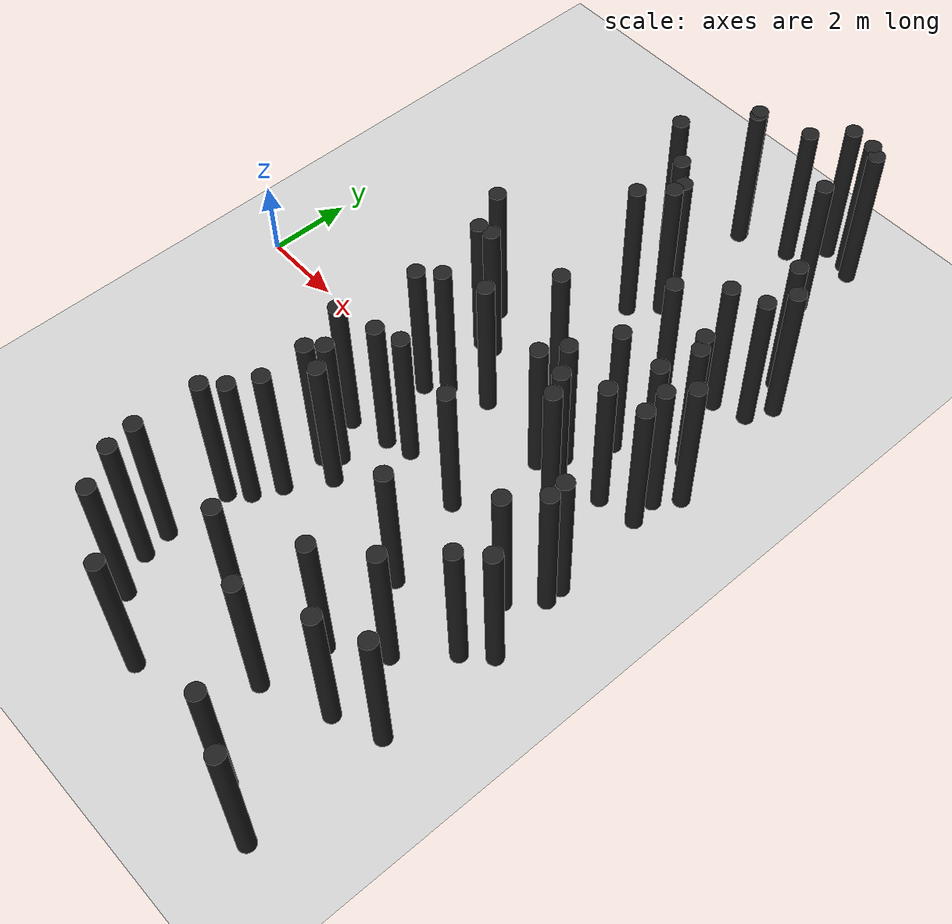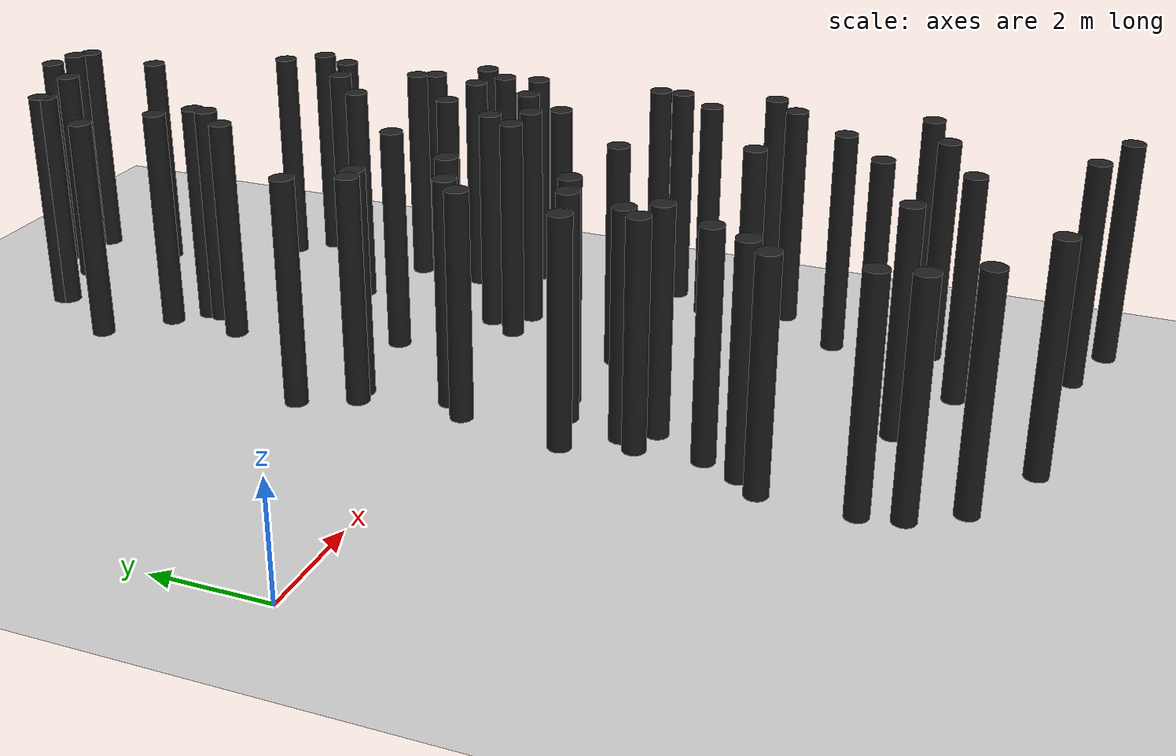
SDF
<sdf version="1.7">
 <world name="default">
  <model name="ground_plane">
   <static>1</static>
   <link name="link">
    <collision name="collision">
     <geometry><plane><normal>0 0 1</normal><size>200 200</size></plane></geometry>
     <surface><friction><ode><mu>100</mu><mu2>50</mu2></ode></friction></surface>
    </collision>
    <visual name="visual">
     <cast_shadows>0</cast_shadows>
     <geometry><plane><normal>0 0 1</normal><size>200 200</size></plane></geometry>
     <material>
      <script><uri>file://media/materials/scripts/gazebo.material</uri><name>Gazebo/Grey</name></script>
     </material>
    </visual>
   </link>
  </model>
  <model name="forest_clone_0_0">
   <pose>7.24116 6.37058 0.00358 0 -0 0</pose>
   <static>1</static>
   <link name="cylinder::link">
    <inertial>
     <mass>1</mass>
     <inertia><ixx>0.083</ixx><ixy>0</ixy><ixz>0</ixz><iyy>0.083</iyy><iyz>0</iyz><izz>0.083</izz></inertia>
    </inertial>
    <collision name="collision">
     <geometry><cylinder><radius>0.2</radius><length>4</length></cylinder></geometry>
    </collision>
    <visual name="visual">
     <geometry><cylinder><radius>0.2</radius><length>4</length></cylinder></geometry>
     <material>
      <script><uri>file://media/materials/scripts/gazebo.material</uri><name>Gazebo/Black</name></script>
     </material>
    </visual>
    <pose>0 0 2 0 -0 0</pose>
   </link>
  </model>
  <model name="forest_clone_7_0">
   <pose>5.27494 -7.51544 0.00194 0 -0 0</pose>
   <static>1</static>
   <link name="cylinder::link">
    <inertial>
     <mass>1</mass>
     <inertia><ixx>0.083</ixx><ixy>0</ixy><ixz>0</ixz><iyy>0.083</iyy><iyz>0</iyz><izz>0.083</izz></inertia>
    </inertial>
    <collision name="collision">
     <geometry><cylinder><radius>0.2</radius><length>4</length></cylinder></geometry>
    </collision>
    <visual name="visual">
     <geometry><cylinder><radius>0.2</radius><length>4</length></cylinder></geometry>
     <material>
      <script><uri>file://media/materials/scripts/gazebo.material</uri><name>Gazebo/Black</name></script>
     </material>
    </visual>
    <pose>0 0 2 0 -0 0</pose>
   </link>
  </model>
  <model name="forest_clone_9_0">
   <pose>5.24685 2.64492 0.00361 0 -0 0</pose>
   <static>1</static>
   <link name="cylinder::link">
    <inertial>
     <mass>1</mass>
     <inertia><ixx>0.083</ixx><ixy>0</ixy><ixz>0</ixz><iyy>0.083</iyy><iyz>0</iyz><izz>0.083</izz></inertia>
    </inertial>
    <collision name="collision">
     <geometry><cylinder><radius>0.2</radius><length>4</length></cylinder></geometry>
    </collision>
    <visual name="visual">
     <geometry><cylinder><radius>0.2</radius><length>4</length></cylinder></geometry>
     <material>
      <script><uri>file://media/materials/scripts/gazebo.material</uri><name>Gazebo/Black</name></script>
     </material>
    </visual>
    <pose>0 0 2 0 -0 0</pose>
   </link>
  </model>
  <model name="forest_clone_11_0">
   <pose>6.44481 -3.3003 -0.00358 0 -0 0</pose>
   <static>1</static>
   <link name="cylinder::link">
    <inertial>
     <mass>1</mass>
     <inertia><ixx>0.083</ixx><ixy>0</ixy><ixz>0</ixz><iyy>0.083</iyy><iyz>0</iyz><izz>0.083</izz></inertia>
    </inertial>
    <collision name="collision">
     <geometry><cylinder><radius>0.2</radius><length>4</length></cylinder></geometry>
    </collision>
    <visual name="visual">
     <geometry><cylinder><radius>0.2</radius><length>4</length></cylinder></geometry>
     <material>
      <script><uri>file://media/materials/scripts/gazebo.material</uri><name>Gazebo/Black</name></script>
     </material>
    </visual>
    <pose>0 0 2 0 -0 0</pose>
   </link>
  </model>
  <model name="forest_clone_13_0">
   <pose>5.80687 -8.34384 -0.00076 0 -0 0</pose>
   <static>1</static>
   <link name="cylinder::link">
    <inertial>
     <mass>1</mass>
     <inertia><ixx>0.083</ixx><ixy>0</ixy><ixz>0</ixz><iyy>0.083</iyy><iyz>0</iyz><izz>0.083</izz></inertia>
    </inertial>
    <collision name="collision">
     <geometry><cylinder><radius>0.2</radius><length>4</length></cylinder></geometry>
    </collision>
    <visual name="visual">
     <geometry><cylinder><radius>0.2</radius><length>4</length></cylinder></geometry>
     <material>
      <script><uri>file://media/materials/scripts/gazebo.material</uri><name>Gazebo/Black</name></script>
     </material>
    </visual>
    <pose>0 0 2 0 -0 0</pose>
   </link>
  </model>
  <model name="forest_clone_18_0">
   <pose>6.99982 -1.56223 -0.00319 0 -0 0</pose>
   <static>1</static>
   <link name="cylinder::link">
    <inertial>
     <mass>1</mass>
     <inertia><ixx>0.083</ixx><ixy>0</ixy><ixz>0</ixz><iyy>0.083</iyy><iyz>0</iyz><izz>0.083</izz></inertia>
    </inertial>
    <collision name="collision">
     <geometry><cylinder><radius>0.2</radius><length>4</length></cylinder></geometry>
    </collision>
    <visual name="visual">
     <geometry><cylinder><radius>0.2</radius><length>4</length></cylinder></geometry>
     <material>
      <script><uri>file://media/materials/scripts/gazebo.material</uri><name>Gazebo/Black</name></script>
     </material>
    </visual>
    <pose>0 0 2 0 -0 0</pose>
   </link>
  </model>
  <model name="forest_clone_23_0">
   <pose>11.6534 0.871969 -0.00336 0 -0 0</pose>
   <static>1</static>
   <link name="cylinder::link">
    <inertial>
     <mass>1</mass>
     <inertia><ixx>0.083</ixx><ixy>0</ixy><ixz>0</ixz><iyy>0.083</iyy><iyz>0</iyz><izz>0.083</izz></inertia>
    </inertial>
    <collision name="collision">
     <geometry><cylinder><radius>0.2</radius><length>4</length></cylinder></geometry>
    </collision>
    <visual name="visual">
     <geometry><cylinder><radius>0.2</radius><length>4</length></cylinder></geometry>
     <material>
      <script><uri>file://media/materials/scripts/gazebo.material</uri><name>Gazebo/Black</name></script>
     </material>
    </visual>
    <pose>0 0 2 0 -0 0</pose>
   </link>
  </model>
  <model name="forest_clone_32_0">
   <pose>5.68981 1.71933 0.00222 0 -0 0</pose>
   <static>1</static>
   <link name="cylinder::link">
    <inertial>
     <mass>1</mass>
     <inertia><ixx>0.083</ixx><ixy>0</ixy><ixz>0</ixz><iyy>0.083</iyy><iyz>0</iyz><izz>0.083</izz></inertia>
    </inertial>
    <collision name="collision">
     <geometry><cylinder><radius>0.2</radius><length>4</length></cylinder></geometry>
    </collision>
    <visual name="visual">
     <geometry><cylinder><radius>0.2</radius><length>4</length></cylinder></geometry>
     <material>
      <script><uri>file://media/materials/scripts/gazebo.material</uri><name>Gazebo/Black</name></script>
     </material>
    </visual>
    <pose>0 0 2 0 -0 0</pose>
   </link>
  </model>
  <model name="forest_clone_45_0">
   <pose>7.76228 5.9118 -0.0038 0 -0 0</pose>
   <static>1</static>
   <link name="cylinder::link">
    <inertial>
     <mass>1</mass>
     <inertia><ixx>0.083</ixx><ixy>0</ixy><ixz>0</ixz><iyy>0.083</iyy><iyz>0</iyz><izz>0.083</izz></inertia>
    </inertial>
    <collision name="collision">
     <geometry><cylinder><radius>0.2</radius><length>4</length></cylinder></geometry>
    </collision>
    <visual name="visual">
     <geometry><cylinder><radius>0.2</radius><length>4</length></cylinder></geometry>
     <material>
      <script><uri>file://media/materials/scripts/gazebo.material</uri><name>Gazebo/Black</name></script>
     </material>
    </visual>
    <pose>0 0 2 0 -0 0</pose>
   </link>
  </model>
  <model name="forest_clone_50_0">
   <pose>11.5881 -4.08853 -0.00065 0 -0 0</pose>
   <static>1</static>
   <link name="cylinder::link">
    <inertial>
     <mass>1</mass>
     <inertia><ixx>0.083</ixx><ixy>0</ixy><ixz>0</ixz><iyy>0.083</iyy><iyz>0</iyz><izz>0.083</izz></inertia>
    </inertial>
    <collision name="collision">
     <geometry><cylinder><radius>0.2</radius><length>4</length></cylinder></geometry>
    </collision>
    <visual name="visual">
     <geometry><cylinder><radius>0.2</radius><length>4</length></cylinder></geometry>
     <material>
      <script><uri>file://media/materials/scripts/gazebo.material</uri><name>Gazebo/Black</name></script>
     </material>
    </visual>
    <pose>0 0 2 0 -0 0</pose>
   </link>
  </model>
  <model name="forest_clone_62_0">
   <pose>11.2828 -2.61491 0.00063 0 -0 0</pose>
   <static>1</static>
   <link name="cylinder::link">
    <inertial>
     <mass>1</mass>
     <inertia><ixx>0.083</ixx><ixy>0</ixy><ixz>0</ixz><iyy>0.083</iyy><iyz>0</iyz><izz>0.083</izz></inertia>
    </inertial>
    <collision name="collision">
     <geometry><cylinder><radius>0.2</radius><length>4</length></cylinder></geometry>
    </collision>
    <visual name="visual">
     <geometry><cylinder><radius>0.2</radius><length>4</length></cylinder></geometry>
     <material>
      <script><uri>file://media/materials/scripts/gazebo.material</uri><name>Gazebo/Black</name></script>
     </material>
    </visual>
    <pose>0 0 2 0 -0 0</pose>
   </link>
  </model>
  <model name="forest_clone_98_0">
   <pose>6.19153 0.254347 -0.00416 0 -0 0</pose>
   <static>1</static>
   <link name="cylinder::link">
    <inertial>
     <mass>1</mass>
     <inertia><ixx>0.083</ixx><ixy>0</ixy><ixz>0</ixz><iyy>0.083</iyy><iyz>0</iyz><izz>0.083</izz></inertia>
    </inertial>
    <collision name="collision">
     <geometry><cylinder><radius>0.2</radius><length>4</length></cylinder></geometry>
    </collision>
    <visual name="visual">
     <geometry><cylinder><radius>0.2</radius><length>4</length></cylinder></geometry>
     <material>
      <script><uri>file://media/materials/scripts/gazebo.material</uri><name>Gazebo/Black</name></script>
     </material>
    </visual>
    <pose>0 0 2 0 -0 0</pose>
   </link>
  </model>
  <model name="forest_clone_105_0">
   <pose>6.01381 1.78442 -0.00227 0 -0 0</pose>
   <static>1</static>
   <link name="cylinder::link">
    <inertial>
     <mass>1</mass>
     <inertia><ixx>0.083</ixx><ixy>0</ixy><ixz>0</ixz><iyy>0.083</iyy><iyz>0</iyz><izz>0.083</izz></inertia>
    </inertial>
    <collision name="collision">
     <geometry><cylinder><radius>0.2</radius><length>4</length></cylinder></geometry>
    </collision>
    <visual name="visual">
     <geometry><cylinder><radius>0.2</radius><length>4</length></cylinder></geometry>
     <material>
      <script><uri>file://media/materials/scripts/gazebo.material</uri><name>Gazebo/Black</name></script>
     </material>
    </visual>
    <pose>0 0 2 0 -0 0</pose>
   </link>
  </model>
  <model name="forest_clone_112_0">
   <pose>7.35279 8.75357 -0.00301 0 -0 0</pose>
   <static>1</static>
   <link name="cylinder::link">
    <inertial>
     <mass>1</mass>
     <inertia><ixx>0.083</ixx><ixy>0</ixy><ixz>0</ixz><iyy>0.083</iyy><iyz>0</iyz><izz>0.083</izz></inertia>
    </inertial>
    <collision name="collision">
     <geometry><cylinder><radius>0.2</radius><length>4</length></cylinder></geometry>
    </collision>
    <visual name="visual">
     <geometry><cylinder><radius>0.2</radius><length>4</length></cylinder></geometry>
     <material>
      <script><uri>file://media/materials/scripts/gazebo.material</uri><name>Gazebo/Black</name></script>
     </material>
    </visual>
    <pose>0 0 2 0 -0 0</pose>
   </link>
  </model>
  <model name="forest_clone_115_0">
   <pose>6.33511 7.2689 0.00385 0 -0 0</pose>
   <static>1</static>
   <link name="cylinder::link">
    <inertial>
     <mass>1</mass>
     <inertia><ixx>0.083</ixx><ixy>0</ixy><ixz>0</ixz><iyy>0.083</iyy><iyz>0</iyz><izz>0.083</izz></inertia>
    </inertial>
    <collision name="collision">
     <geometry><cylinder><radius>0.2</radius><length>4</length></cylinder></geometry>
    </collision>
    <visual name="visual">
     <geometry><cylinder><radius>0.2</radius><length>4</length></cylinder></geometry>
     <material>
      <script><uri>file://media/materials/scripts/gazebo.material</uri><name>Gazebo/Black</name></script>
     </material>
    </visual>
    <pose>0 0 2 0 -0 0</pose>
   </link>
  </model>
  <model name="forest_clone_117_0">
   <pose>9.62198 -6.0138 -0.00323 0 -0 0</pose>
   <static>1</static>
   <link name="cylinder::link">
    <inertial>
     <mass>1</mass>
     <inertia><ixx>0.083</ixx><ixy>0</ixy><ixz>0</ixz><iyy>0.083</iyy><iyz>0</iyz><izz>0.083</izz></inertia>
    </inertial>
    <collision name="collision">
     <geometry><cylinder><radius>0.2</radius><length>4</length></cylinder></geometry>
    </collision>
    <visual name="visual">
     <geometry><cylinder><radius>0.2</radius><length>4</length></cylinder></geometry>
     <material>
      <script><uri>file://media/materials/scripts/gazebo.material</uri><name>Gazebo/Black</name></script>
     </material>
    </visual>
    <pose>0 0 2 0 -0 0</pose>
   </link>
  </model>
  <model name="forest_clone_137_0">
   <pose>7.11188 0.648205 0.00348 0 -0 0</pose>
   <static>1</static>
   <link name="cylinder::link">
    <inertial>
     <mass>1</mass>
     <inertia><ixx>0.083</ixx><ixy>0</ixy><ixz>0</ixz><iyy>0.083</iyy><iyz>0</iyz><izz>0.083</izz></inertia>
    </inertial>
    <collision name="collision">
     <geometry><cylinder><radius>0.2</radius><length>4</length></cylinder></geometry>
    </collision>
    <visual name="visual">
     <geometry><cylinder><radius>0.2</radius><length>4</length></cylinder></geometry>
     <material>
      <script><uri>file://media/materials/scripts/gazebo.material</uri><name>Gazebo/Black</name></script>
     </material>
    </visual>
    <pose>0 0 2 0 -0 0</pose>
   </link>
  </model>
  <model name="forest_clone_138_0">
   <pose>11.117 5.95949 -0.00219 0 -0 0</pose>
   <static>1</static>
   <link name="cylinder::link">
    <inertial>
     <mass>1</mass>
     <inertia><ixx>0.083</ixx><ixy>0</ixy><ixz>0</ixz><iyy>0.083</iyy><iyz>0</iyz><izz>0.083</izz></inertia>
    </inertial>
    <collision name="collision">
     <geometry><cylinder><radius>0.2</radius><length>4</length></cylinder></geometry>
    </collision>
    <visual name="visual">
     <geometry><cylinder><radius>0.2</radius><length>4</length></cylinder></geometry>
     <material>
      <script><uri>file://media/materials/scripts/gazebo.material</uri><name>Gazebo/Black</name></script>
     </material>
    </visual>
    <pose>0 0 2 0 -0 0</pose>
   </link>
  </model>
  <model name="forest_clone_0_1">
   <pose>5.45907 -1.99936 0.00451 0 -0 0</pose>
   <static>1</static>
   <link name="cylinder::link">
    <inertial>
     <mass>1</mass>
     <inertia><ixx>0.083</ixx><ixy>0</ixy><ixz>0</ixz><iyy>0.083</iyy><iyz>0</iyz><izz>0.083</izz></inertia>
    </inertial>
    <collision name="collision">
     <geometry><cylinder><radius>0.2</radius><length>4</length></cylinder></geometry>
    </collision>
    <visual name="visual">
     <geometry><cylinder><radius>0.2</radius><length>4</length></cylinder></geometry>
     <material>
      <script><uri>file://media/materials/scripts/gazebo.material</uri><name>Gazebo/Black</name></script>
     </material>
    </visual>
    <pose>0 0 2 0 -0 0</pose>
   </link>
  </model>
  <model name="forest_clone_3_1">
   <pose>11.9585 -9.74185 0.00065 0 -0 0</pose>
   <static>1</static>
   <link name="cylinder::link">
    <inertial>
     <mass>1</mass>
     <inertia><ixx>0.083</ixx><ixy>0</ixy><ixz>0</ixz><iyy>0.083</iyy><iyz>0</iyz><izz>0.083</izz></inertia>
    </inertial>
    <collision name="collision">
     <geometry><cylinder><radius>0.2</radius><length>4</length></cylinder></geometry>
    </collision>
    <visual name="visual">
     <geometry><cylinder><radius>0.2</radius><length>4</length></cylinder></geometry>
     <material>
      <script><uri>file://media/materials/scripts/gazebo.material</uri><name>Gazebo/Black</name></script>
     </material>
    </visual>
    <pose>0 0 2 0 -0 0</pose>
   </link>
  </model>
  <model name="forest_clone_10_1">
   <pose>10.76 -9.30435 0.00193 0 -0 0</pose>
   <static>1</static>
   <link name="cylinder::link">
    <inertial>
     <mass>1</mass>
     <inertia><ixx>0.083</ixx><ixy>0</ixy><ixz>0</ixz><iyy>0.083</iyy><iyz>0</iyz><izz>0.083</izz></inertia>
    </inertial>
    <collision name="collision">
     <geometry><cylinder><radius>0.2</radius><length>4</length></cylinder></geometry>
    </collision>
    <visual name="visual">
     <geometry><cylinder><radius>0.2</radius><length>4</length></cylinder></geometry>
     <material>
      <script><uri>file://media/materials/scripts/gazebo.material</uri><name>Gazebo/Black</name></script>
     </material>
    </visual>
    <pose>0 0 2 0 -0 0</pose>
   </link>
  </model>
  <model name="forest_clone_16_1">
   <pose>7.31064 8.85233 -0.00019 0 -0 0</pose>
   <static>1</static>
   <link name="cylinder::link">
    <inertial>
     <mass>1</mass>
     <inertia><ixx>0.083</ixx><ixy>0</ixy><ixz>0</ixz><iyy>0.083</iyy><iyz>0</iyz><izz>0.083</izz></inertia>
    </inertial>
    <collision name="collision">
     <geometry><cylinder><radius>0.2</radius><length>4</length></cylinder></geometry>
    </collision>
    <visual name="visual">
     <geometry><cylinder><radius>0.2</radius><length>4</length></cylinder></geometry>
     <material>
      <script><uri>file://media/materials/scripts/gazebo.material</uri><name>Gazebo/Black</name></script>
     </material>
    </visual>
    <pose>0 0 2 0 -0 0</pose>
   </link>
  </model>
  <model name="forest_clone_27_1">
   <pose>5.86993 -4.25539 -1e-05 0 -0 0</pose>
   <static>1</static>
   <link name="cylinder::link">
    <inertial>
     <mass>1</mass>
     <inertia><ixx>0.083</ixx><ixy>0</ixy><ixz>0</ixz><iyy>0.083</iyy><iyz>0</iyz><izz>0.083</izz></inertia>
    </inertial>
    <collision name="collision">
     <geometry><cylinder><radius>0.2</radius><length>4</length></cylinder></geometry>
    </collision>
    <visual name="visual">
     <geometry><cylinder><radius>0.2</radius><length>4</length></cylinder></geometry>
     <material>
      <script><uri>file://media/materials/scripts/gazebo.material</uri><name>Gazebo/Black</name></script>
     </material>
    </visual>
    <pose>0 0 2 0 -0 0</pose>
   </link>
  </model>
  <model name="forest_clone_30_1">
   <pose>7.92701 2.06151 0.00265 0 -0 0</pose>
   <static>1</static>
   <link name="cylinder::link">
    <inertial>
     <mass>1</mass>
     <inertia><ixx>0.083</ixx><ixy>0</ixy><ixz>0</ixz><iyy>0.083</iyy><iyz>0</iyz><izz>0.083</izz></inertia>
    </inertial>
    <collision name="collision">
     <geometry><cylinder><radius>0.2</radius><length>4</length></cylinder></geometry>
    </collision>
    <visual name="visual">
     <geometry><cylinder><radius>0.2</radius><length>4</length></cylinder></geometry>
     <material>
      <script><uri>file://media/materials/scripts/gazebo.material</uri><name>Gazebo/Black</name></script>
     </material>
    </visual>
    <pose>0 0 2 0 -0 0</pose>
   </link>
  </model>
  <model name="forest_clone_32_1">
   <pose>7.21268 5.00533 -0.00056 0 -0 0</pose>
   <static>1</static>
   <link name="cylinder::link">
    <inertial>
     <mass>1</mass>
     <inertia><ixx>0.083</ixx><ixy>0</ixy><ixz>0</ixz><iyy>0.083</iyy><iyz>0</iyz><izz>0.083</izz></inertia>
    </inertial>
    <collision name="collision">
     <geometry><cylinder><radius>0.2</radius><length>4</length></cylinder></geometry>
    </collision>
    <visual name="visual">
     <geometry><cylinder><radius>0.2</radius><length>4</length></cylinder></geometry>
     <material>
      <script><uri>file://media/materials/scripts/gazebo.material</uri><name>Gazebo/Black</name></script>
     </material>
    </visual>
    <pose>0 0 2 0 -0 0</pose>
   </link>
  </model>
  <model name="forest_clone_37_1">
   <pose>9.10024 0.349503 -0.00406 0 -0 0</pose>
   <static>1</static>
   <link name="cylinder::link">
    <inertial>
     <mass>1</mass>
     <inertia><ixx>0.083</ixx><ixy>0</ixy><ixz>0</ixz><iyy>0.083</iyy><iyz>0</iyz><izz>0.083</izz></inertia>
    </inertial>
    <collision name="collision">
     <geometry><cylinder><radius>0.2</radius><length>4</length></cylinder></geometry>
    </collision>
    <visual name="visual">
     <geometry><cylinder><radius>0.2</radius><length>4</length></cylinder></geometry>
     <material>
      <script><uri>file://media/materials/scripts/gazebo.material</uri><name>Gazebo/Black</name></script>
     </material>
    </visual>
    <pose>0 0 2 0 -0 0</pose>
   </link>
  </model>
  <model name="forest_clone_44_1">
   <pose>9.42004 0.885029 -0.00153 0 -0 0</pose>
   <static>1</static>
   <link name="cylinder::link">
    <inertial>
     <mass>1</mass>
     <inertia><ixx>0.083</ixx><ixy>0</ixy><ixz>0</ixz><iyy>0.083</iyy><iyz>0</iyz><izz>0.083</izz></inertia>
    </inertial>
    <collision name="collision">
     <geometry><cylinder><radius>0.2</radius><length>4</length></cylinder></geometry>
    </collision>
    <visual name="visual">
     <geometry><cylinder><radius>0.2</radius><length>4</length></cylinder></geometry>
     <material>
      <script><uri>file://media/materials/scripts/gazebo.material</uri><name>Gazebo/Black</name></script>
     </material>
    </visual>
    <pose>0 0 2 0 -0 0</pose>
   </link>
  </model>
  <model name="forest_clone_51_1">
   <pose>5.15196 -6.83699 0.00191 0 -0 0</pose>
   <static>1</static>
   <link name="cylinder::link">
    <inertial>
     <mass>1</mass>
     <inertia><ixx>0.083</ixx><ixy>0</ixy><ixz>0</ixz><iyy>0.083</iyy><iyz>0</iyz><izz>0.083</izz></inertia>
    </inertial>
    <collision name="collision">
     <geometry><cylinder><radius>0.2</radius><length>4</length></cylinder></geometry>
    </collision>
    <visual name="visual">
     <geometry><cylinder><radius>0.2</radius><length>4</length></cylinder></geometry>
     <material>
      <script><uri>file://media/materials/scripts/gazebo.material</uri><name>Gazebo/Black</name></script>
     </material>
    </visual>
    <pose>0 0 2 0 -0 0</pose>
   </link>
  </model>
  <model name="forest_clone_52_1">
   <pose>6.40989 -1.75638 -0.00474 0 -0 0</pose>
   <static>1</static>
   <link name="cylinder::link">
    <inertial>
     <mass>1</mass>
     <inertia><ixx>0.083</ixx><ixy>0</ixy><ixz>0</ixz><iyy>0.083</iyy><iyz>0</iyz><izz>0.083</izz></inertia>
    </inertial>
    <collision name="collision">
     <geometry><cylinder><radius>0.2</radius><length>4</length></cylinder></geometry>
    </collision>
    <visual name="visual">
     <geometry><cylinder><radius>0.2</radius><length>4</length></cylinder></geometry>
     <material>
      <script><uri>file://media/materials/scripts/gazebo.material</uri><name>Gazebo/Black</name></script>
     </material>
    </visual>
    <pose>0 0 2 0 -0 0</pose>
   </link>
  </model>
  <model name="forest_clone_58_1">
   <pose>10.9163 -6.87302 -0.001 0 -0 0</pose>
   <static>1</static>
   <link name="cylinder::link">
    <inertial>
     <mass>1</mass>
     <inertia><ixx>0.083</ixx><ixy>0</ixy><ixz>0</ixz><iyy>0.083</iyy><iyz>0</iyz><izz>0.083</izz></inertia>
    </inertial>
    <collision name="collision">
     <geometry><cylinder><radius>0.2</radius><length>4</length></cylinder></geometry>
    </collision>
    <visual name="visual">
     <geometry><cylinder><radius>0.2</radius><length>4</length></cylinder></geometry>
     <material>
      <script><uri>file://media/materials/scripts/gazebo.material</uri><name>Gazebo/Black</name></script>
     </material>
    </visual>
    <pose>0 0 2 0 -0 0</pose>
   </link>
  </model>
  <model name="forest_clone_74_1">
   <pose>11.2771 2.80939 -0.0047 0 -0 0</pose>
   <static>1</static>
   <link name="cylinder::link">
    <inertial>
     <mass>1</mass>
     <inertia><ixx>0.083</ixx><ixy>0</ixy><ixz>0</ixz><iyy>0.083</iyy><iyz>0</iyz><izz>0.083</izz></inertia>
    </inertial>
    <collision name="collision">
     <geometry><cylinder><radius>0.2</radius><length>4</length></cylinder></geometry>
    </collision>
    <visual name="visual">
     <geometry><cylinder><radius>0.2</radius><length>4</length></cylinder></geometry>
     <material>
      <script><uri>file://media/materials/scripts/gazebo.material</uri><name>Gazebo/Black</name></script>
     </material>
    </visual>
    <pose>0 0 2 0 -0 0</pose>
   </link>
  </model>
  <model name="forest_clone_82_1">
   <pose>11.5743 1.51346 -0.00472 0 -0 0</pose>
   <static>1</static>
   <link name="cylinder::link">
    <inertial>
     <mass>1</mass>
     <inertia><ixx>0.083</ixx><ixy>0</ixy><ixz>0</ixz><iyy>0.083</iyy><iyz>0</iyz><izz>0.083</izz></inertia>
    </inertial>
    <collision name="collision">
     <geometry><cylinder><radius>0.2</radius><length>4</length></cylinder></geometry>
    </collision>
    <visual name="visual">
     <geometry><cylinder><radius>0.2</radius><length>4</length></cylinder></geometry>
     <material>
      <script><uri>file://media/materials/scripts/gazebo.material</uri><name>Gazebo/Black</name></script>
     </material>
    </visual>
    <pose>0 0 2 0 -0 0</pose>
   </link>
  </model>
  <model name="forest_clone_84_1">
   <pose>11.8597 -1.89269 -0.00338 0 -0 0</pose>
   <static>1</static>
   <link name="cylinder::link">
    <inertial>
     <mass>1</mass>
     <inertia><ixx>0.083</ixx><ixy>0</ixy><ixz>0</ixz><iyy>0.083</iyy><iyz>0</iyz><izz>0.083</izz></inertia>
    </inertial>
    <collision name="collision">
     <geometry><cylinder><radius>0.2</radius><length>4</length></cylinder></geometry>
    </collision>
    <visual name="visual">
     <geometry><cylinder><radius>0.2</radius><length>4</length></cylinder></geometry>
     <material>
      <script><uri>file://media/materials/scripts/gazebo.material</uri><name>Gazebo/Black</name></script>
     </material>
    </visual>
    <pose>0 0 2 0 -0 0</pose>
   </link>
  </model>
  <model name="forest_clone_94_1">
   <pose>11.9528 2.03787 -0.00492 0 -0 0</pose>
   <static>1</static>
   <link name="cylinder::link">
    <inertial>
     <mass>1</mass>
     <inertia><ixx>0.083</ixx><ixy>0</ixy><ixz>0</ixz><iyy>0.083</iyy><iyz>0</iyz><izz>0.083</izz></inertia>
    </inertial>
    <collision name="collision">
     <geometry><cylinder><radius>0.2</radius><length>4</length></cylinder></geometry>
    </collision>
    <visual name="visual">
     <geometry><cylinder><radius>0.2</radius><length>4</length></cylinder></geometry>
     <material>
      <script><uri>file://media/materials/scripts/gazebo.material</uri><name>Gazebo/Black</name></script>
     </material>
    </visual>
    <pose>0 0 2 0 -0 0</pose>
   </link>
  </model>
  <model name="forest_clone_98_1">
   <pose>11.9873 -6.42283 -0.00105 0 -0 0</pose>
   <static>1</static>
   <link name="cylinder::link">
    <inertial>
     <mass>1</mass>
     <inertia><ixx>0.083</ixx><ixy>0</ixy><ixz>0</ixz><iyy>0.083</iyy><iyz>0</iyz><izz>0.083</izz></inertia>
    </inertial>
    <collision name="collision">
     <geometry><cylinder><radius>0.2</radius><length>4</length></cylinder></geometry>
    </collision>
    <visual name="visual">
     <geometry><cylinder><radius>0.2</radius><length>4</length></cylinder></geometry>
     <material>
      <script><uri>file://media/materials/scripts/gazebo.material</uri><name>Gazebo/Black</name></script>
     </material>
    </visual>
    <pose>0 0 2 0 -0 0</pose>
   </link>
  </model>
  <model name="forest_clone_101_1">
   <pose>11.6135 5.37208 0.00285 0 -0 0</pose>
   <static>1</static>
   <link name="cylinder::link">
    <inertial>
     <mass>1</mass>
     <inertia><ixx>0.083</ixx><ixy>0</ixy><ixz>0</ixz><iyy>0.083</iyy><iyz>0</iyz><izz>0.083</izz></inertia>
    </inertial>
    <collision name="collision">
     <geometry><cylinder><radius>0.2</radius><length>4</length></cylinder></geometry>
    </collision>
    <visual name="visual">
     <geometry><cylinder><radius>0.2</radius><length>4</length></cylinder></geometry>
     <material>
      <script><uri>file://media/materials/scripts/gazebo.material</uri><name>Gazebo/Black</name></script>
     </material>
    </visual>
    <pose>0 0 2 0 -0 0</pose>
   </link>
  </model>
  <model name="forest_clone_105_1">
   <pose>9.36098 -3.93711 0.00133 0 -0 0</pose>
   <static>1</static>
   <link name="cylinder::link">
    <inertial>
     <mass>1</mass>
     <inertia><ixx>0.083</ixx><ixy>0</ixy><ixz>0</ixz><iyy>0.083</iyy><iyz>0</iyz><izz>0.083</izz></inertia>
    </inertial>
    <collision name="collision">
     <geometry><cylinder><radius>0.2</radius><length>4</length></cylinder></geometry>
    </collision>
    <visual name="visual">
     <geometry><cylinder><radius>0.2</radius><length>4</length></cylinder></geometry>
     <material>
      <script><uri>file://media/materials/scripts/gazebo.material</uri><name>Gazebo/Black</name></script>
     </material>
    </visual>
    <pose>0 0 2 0 -0 0</pose>
   </link>
  </model>
  <model name="forest_clone_108_1">
   <pose>10.7453 0.708152 0.0032 0 -0 0</pose>
   <static>1</static>
   <link name="cylinder::link">
    <inertial>
     <mass>1</mass>
     <inertia><ixx>0.083</ixx><ixy>0</ixy><ixz>0</ixz><iyy>0.083</iyy><iyz>0</iyz><izz>0.083</izz></inertia>
    </inertial>
    <collision name="collision">
     <geometry><cylinder><radius>0.2</radius><length>4</length></cylinder></geometry>
    </collision>
    <visual name="visual">
     <geometry><cylinder><radius>0.2</radius><length>4</length></cylinder></geometry>
     <material>
      <script><uri>file://media/materials/scripts/gazebo.material</uri><name>Gazebo/Black</name></script>
     </material>
    </visual>
    <pose>0 0 2 0 -0 0</pose>
   </link>
  </model>
  <model name="forest_clone_115_1">
   <pose>7.33814 -9.15347 -0.00486 0 -0 0</pose>
   <static>1</static>
   <link name="cylinder::link">
    <inertial>
     <mass>1</mass>
     <inertia><ixx>0.083</ixx><ixy>0</ixy><ixz>0</ixz><iyy>0.083</iyy><iyz>0</iyz><izz>0.083</izz></inertia>
    </inertial>
    <collision name="collision">
     <geometry><cylinder><radius>0.2</radius><length>4</length></cylinder></geometry>
    </collision>
    <visual name="visual">
     <geometry><cylinder><radius>0.2</radius><length>4</length></cylinder></geometry>
     <material>
      <script><uri>file://media/materials/scripts/gazebo.material</uri><name>Gazebo/Black</name></script>
     </material>
    </visual>
    <pose>0 0 2 0 -0 0</pose>
   </link>
  </model>
  <model name="forest_clone_117_1">
   <pose>5.56009 -4.89459 0.00203 0 -0 0</pose>
   <static>1</static>
   <link name="cylinder::link">
    <inertial>
     <mass>1</mass>
     <inertia><ixx>0.083</ixx><ixy>0</ixy><ixz>0</ixz><iyy>0.083</iyy><iyz>0</iyz><izz>0.083</izz></inertia>
    </inertial>
    <collision name="collision">
     <geometry><cylinder><radius>0.2</radius><length>4</length></cylinder></geometry>
    </collision>
    <visual name="visual">
     <geometry><cylinder><radius>0.2</radius><length>4</length></cylinder></geometry>
     <material>
      <script><uri>file://media/materials/scripts/gazebo.material</uri><name>Gazebo/Black</name></script>
     </material>
    </visual>
    <pose>0 0 2 0 -0 0</pose>
   </link>
  </model>
  <model name="forest_clone_119_1">
   <pose>8.56309 9.16724 -0.00315 0 -0 0</pose>
   <static>1</static>
   <link name="cylinder::link">
    <inertial>
     <mass>1</mass>
     <inertia><ixx>0.083</ixx><ixy>0</ixy><ixz>0</ixz><iyy>0.083</iyy><iyz>0</iyz><izz>0.083</izz></inertia>
    </inertial>
    <collision name="collision">
     <geometry><cylinder><radius>0.2</radius><length>4</length></cylinder></geometry>
    </collision>
    <visual name="visual">
     <geometry><cylinder><radius>0.2</radius><length>4</length></cylinder></geometry>
     <material>
      <script><uri>file://media/materials/scripts/gazebo.material</uri><name>Gazebo/Black</name></script>
     </material>
    </visual>
    <pose>0 0 2 0 -0 0</pose>
   </link>
  </model>
  <model name="forest_clone_142_1">
   <pose>11.048 1.88111 -0.0025 0 -0 0</pose>
   <static>1</static>
   <link name="cylinder::link">
    <inertial>
     <mass>1</mass>
     <inertia><ixx>0.083</ixx><ixy>0</ixy><ixz>0</ixz><iyy>0.083</iyy><iyz>0</iyz><izz>0.083</izz></inertia>
    </inertial>
    <collision name="collision">
     <geometry><cylinder><radius>0.2</radius><length>4</length></cylinder></geometry>
    </collision>
    <visual name="visual">
     <geometry><cylinder><radius>0.2</radius><length>4</length></cylinder></geometry>
     <material>
      <script><uri>file://media/materials/scripts/gazebo.material</uri><name>Gazebo/Black</name></script>
     </material>
    </visual>
    <pose>0 0 2 0 -0 0</pose>
   </link>
  </model>
  <model name="forest_clone_2_2">
   <pose>9.4078 -7.5358 -0.00182 0 -0 0</pose>
   <static>1</static>
   <link name="cylinder::link">
    <inertial>
     <mass>1</mass>
     <inertia><ixx>0.083</ixx><ixy>0</ixy><ixz>0</ixz><iyy>0.083</iyy><iyz>0</iyz><izz>0.083</izz></inertia>
    </inertial>
    <collision name="collision">
     <geometry><cylinder><radius>0.2</radius><length>4</length></cylinder></geometry>
    </collision>
    <visual name="visual">
     <geometry><cylinder><radius>0.2</radius><length>4</length></cylinder></geometry>
     <material>
      <script><uri>file://media/materials/scripts/gazebo.material</uri><name>Gazebo/Black</name></script>
     </material>
    </visual>
    <pose>0 0 2 0 -0 0</pose>
   </link>
  </model>
  <model name="forest_clone_5_2">
   <pose>9.68552 3.66755 -0.00115 0 -0 0</pose>
   <static>1</static>
   <link name="cylinder::link">
    <inertial>
     <mass>1</mass>
     <inertia><ixx>0.083</ixx><ixy>0</ixy><ixz>0</ixz><iyy>0.083</iyy><iyz>0</iyz><izz>0.083</izz></inertia>
    </inertial>
    <collision name="collision">
     <geometry><cylinder><radius>0.2</radius><length>4</length></cylinder></geometry>
    </collision>
    <visual name="visual">
     <geometry><cylinder><radius>0.2</radius><length>4</length></cylinder></geometry>
     <material>
      <script><uri>file://media/materials/scripts/gazebo.material</uri><name>Gazebo/Black</name></script>
     </material>
    </visual>
    <pose>0 0 2 0 -0 0</pose>
   </link>
  </model>
  <model name="forest_clone_15_2">
   <pose>11.3351 4.7357 -0.00329 0 -0 0</pose>
   <static>1</static>
   <link name="cylinder::link">
    <inertial>
     <mass>1</mass>
     <inertia><ixx>0.083</ixx><ixy>0</ixy><ixz>0</ixz><iyy>0.083</iyy><iyz>0</iyz><izz>0.083</izz></inertia>
    </inertial>
    <collision name="collision">
     <geometry><cylinder><radius>0.2</radius><length>4</length></cylinder></geometry>
    </collision>
    <visual name="visual">
     <geometry><cylinder><radius>0.2</radius><length>4</length></cylinder></geometry>
     <material>
      <script><uri>file://media/materials/scripts/gazebo.material</uri><name>Gazebo/Black</name></script>
     </material>
    </visual>
    <pose>0 0 2 0 -0 0</pose>
   </link>
  </model>
  <model name="forest_clone_16_2">
   <pose>9.89726 1.9354 0.00202 0 -0 0</pose>
   <static>1</static>
   <link name="cylinder::link">
    <inertial>
     <mass>1</mass>
     <inertia><ixx>0.083</ixx><ixy>0</ixy><ixz>0</ixz><iyy>0.083</iyy><iyz>0</iyz><izz>0.083</izz></inertia>
    </inertial>
    <collision name="collision">
     <geometry><cylinder><radius>0.2</radius><length>4</length></cylinder></geometry>
    </collision>
    <visual name="visual">
     <geometry><cylinder><radius>0.2</radius><length>4</length></cylinder></geometry>
     <material>
      <script><uri>file://media/materials/scripts/gazebo.material</uri><name>Gazebo/Black</name></script>
     </material>
    </visual>
    <pose>0 0 2 0 -0 0</pose>
   </link>
  </model>
  <model name="forest_clone_23_2">
   <pose>7.73939 5.6341 0.00091 0 -0 0</pose>
   <static>1</static>
   <link name="cylinder::link">
    <inertial>
     <mass>1</mass>
     <inertia><ixx>0.083</ixx><ixy>0</ixy><ixz>0</ixz><iyy>0.083</iyy><iyz>0</iyz><izz>0.083</izz></inertia>
    </inertial>
    <collision name="collision">
     <geometry><cylinder><radius>0.2</radius><length>4</length></cylinder></geometry>
    </collision>
    <visual name="visual">
     <geometry><cylinder><radius>0.2</radius><length>4</length></cylinder></geometry>
     <material>
      <script><uri>file://media/materials/scripts/gazebo.material</uri><name>Gazebo/Black</name></script>
     </material>
    </visual>
    <pose>0 0 2 0 -0 0</pose>
   </link>
  </model>
  <model name="forest_clone_24_2">
   <pose>9.83789 0.282086 -0.00386 0 -0 0</pose>
   <static>1</static>
   <link name="cylinder::link">
    <inertial>
     <mass>1</mass>
     <inertia><ixx>0.083</ixx><ixy>0</ixy><ixz>0</ixz><iyy>0.083</iyy><iyz>0</iyz><izz>0.083</izz></inertia>
    </inertial>
    <collision name="collision">
     <geometry><cylinder><radius>0.2</radius><length>4</length></cylinder></geometry>
    </collision>
    <visual name="visual">
     <geometry><cylinder><radius>0.2</radius><length>4</length></cylinder></geometry>
     <material>
      <script><uri>file://media/materials/scripts/gazebo.material</uri><name>Gazebo/Black</name></script>
     </material>
    </visual>
    <pose>0 0 2 0 -0 0</pose>
   </link>
  </model>
  <model name="forest_clone_45_2">
   <pose>11.8393 -1.47434 0.00161 0 -0 0</pose>
   <static>1</static>
   <link name="cylinder::link">
    <inertial>
     <mass>1</mass>
     <inertia><ixx>0.083</ixx><ixy>0</ixy><ixz>0</ixz><iyy>0.083</iyy><iyz>0</iyz><izz>0.083</izz></inertia>
    </inertial>
    <collision name="collision">
     <geometry><cylinder><radius>0.2</radius><length>4</length></cylinder></geometry>
    </collision>
    <visual name="visual">
     <geometry><cylinder><radius>0.2</radius><length>4</length></cylinder></geometry>
     <material>
      <script><uri>file://media/materials/scripts/gazebo.material</uri><name>Gazebo/Black</name></script>
     </material>
    </visual>
    <pose>0 0 2 0 -0 0</pose>
   </link>
  </model>
  <model name="forest_clone_51_2">
   <pose>7.7833 -6.83658 -0.0007 0 -0 0</pose>
   <static>1</static>
   <link name="cylinder::link">
    <inertial>
     <mass>1</mass>
     <inertia><ixx>0.083</ixx><ixy>0</ixy><ixz>0</ixz><iyy>0.083</iyy><iyz>0</iyz><izz>0.083</izz></inertia>
    </inertial>
    <collision name="collision">
     <geometry><cylinder><radius>0.2</radius><length>4</length></cylinder></geometry>
    </collision>
    <visual name="visual">
     <geometry><cylinder><radius>0.2</radius><length>4</length></cylinder></geometry>
     <material>
      <script><uri>file://media/materials/scripts/gazebo.material</uri><name>Gazebo/Black</name></script>
     </material>
    </visual>
    <pose>0 0 2 0 -0 0</pose>
   </link>
  </model>
  <model name="forest_clone_53_2">
   <pose>10.042 9.72093 0.00389 0 -0 0</pose>
   <static>1</static>
   <link name="cylinder::link">
    <inertial>
     <mass>1</mass>
     <inertia><ixx>0.083</ixx><ixy>0</ixy><ixz>0</ixz><iyy>0.083</iyy><iyz>0</iyz><izz>0.083</izz></inertia>
    </inertial>
    <collision name="collision">
     <geometry><cylinder><radius>0.2</radius><length>4</length></cylinder></geometry>
    </collision>
    <visual name="visual">
     <geometry><cylinder><radius>0.2</radius><length>4</length></cylinder></geometry>
     <material>
      <script><uri>file://media/materials/scripts/gazebo.material</uri><name>Gazebo/Black</name></script>
     </material>
    </visual>
    <pose>0 0 2 0 -0 0</pose>
   </link>
  </model>
  <model name="forest_clone_58_2">
   <pose>6.08288 -2.80515 -0.00106 0 -0 0</pose>
   <static>1</static>
   <link name="cylinder::link">
    <inertial>
     <mass>1</mass>
     <inertia><ixx>0.083</ixx><ixy>0</ixy><ixz>0</ixz><iyy>0.083</iyy><iyz>0</iyz><izz>0.083</izz></inertia>
    </inertial>
    <collision name="collision">
     <geometry><cylinder><radius>0.2</radius><length>4</length></cylinder></geometry>
    </collision>
    <visual name="visual">
     <geometry><cylinder><radius>0.2</radius><length>4</length></cylinder></geometry>
     <material>
      <script><uri>file://media/materials/scripts/gazebo.material</uri><name>Gazebo/Black</name></script>
     </material>
    </visual>
    <pose>0 0 2 0 -0 0</pose>
   </link>
  </model>
  <model name="forest_clone_63_2">
   <pose>5.789 -0.139965 0.0044 0 -0 0</pose>
   <static>1</static>
   <link name="cylinder::link">
    <inertial>
     <mass>1</mass>
     <inertia><ixx>0.083</ixx><ixy>0</ixy><ixz>0</ixz><iyy>0.083</iyy><iyz>0</iyz><izz>0.083</izz></inertia>
    </inertial>
    <collision name="collision">
     <geometry><cylinder><radius>0.2</radius><length>4</length></cylinder></geometry>
    </collision>
    <visual name="visual">
     <geometry><cylinder><radius>0.2</radius><length>4</length></cylinder></geometry>
     <material>
      <script><uri>file://media/materials/scripts/gazebo.material</uri><name>Gazebo/Black</name></script>
     </material>
    </visual>
    <pose>0 0 2 0 -0 0</pose>
   </link>
  </model>
  <model name="forest_clone_85_2">
   <pose>9.7803 9.90497 0.00423 0 -0 0</pose>
   <static>1</static>
   <link name="cylinder::link">
    <inertial>
     <mass>1</mass>
     <inertia><ixx>0.083</ixx><ixy>0</ixy><ixz>0</ixz><iyy>0.083</iyy><iyz>0</iyz><izz>0.083</izz></inertia>
    </inertial>
    <collision name="collision">
     <geometry><cylinder><radius>0.2</radius><length>4</length></cylinder></geometry>
    </collision>
    <visual name="visual">
     <geometry><cylinder><radius>0.2</radius><length>4</length></cylinder></geometry>
     <material>
      <script><uri>file://media/materials/scripts/gazebo.material</uri><name>Gazebo/Black</name></script>
     </material>
    </visual>
    <pose>0 0 2 0 -0 0</pose>
   </link>
  </model>
  <model name="forest_clone_88_2">
   <pose>12.1325 -3.57715 -0.00229 0 -0 0</pose>
   <static>1</static>
   <link name="cylinder::link">
    <inertial>
     <mass>1</mass>
     <inertia><ixx>0.083</ixx><ixy>0</ixy><ixz>0</ixz><iyy>0.083</iyy><iyz>0</iyz><izz>0.083</izz></inertia>
    </inertial>
    <collision name="collision">
     <geometry><cylinder><radius>0.2</radius><length>4</length></cylinder></geometry>
    </collision>
    <visual name="visual">
     <geometry><cylinder><radius>0.2</radius><length>4</length></cylinder></geometry>
     <material>
      <script><uri>file://media/materials/scripts/gazebo.material</uri><name>Gazebo/Black</name></script>
     </material>
    </visual>
    <pose>0 0 2 0 -0 0</pose>
   </link>
  </model>
  <model name="forest_clone_96_2">
   <pose>10.5641 4.47327 -0.00167 0 -0 0</pose>
   <static>1</static>
   <link name="cylinder::link">
    <inertial>
     <mass>1</mass>
     <inertia><ixx>0.083</ixx><ixy>0</ixy><ixz>0</ixz><iyy>0.083</iyy><iyz>0</iyz><izz>0.083</izz></inertia>
    </inertial>
    <collision name="collision">
     <geometry><cylinder><radius>0.2</radius><length>4</length></cylinder></geometry>
    </collision>
    <visual name="visual">
     <geometry><cylinder><radius>0.2</radius><length>4</length></cylinder></geometry>
     <material>
      <script><uri>file://media/materials/scripts/gazebo.material</uri><name>Gazebo/Black</name></script>
     </material>
    </visual>
    <pose>0 0 2 0 -0 0</pose>
   </link>
  </model>
  <model name="forest_clone_106_2">
   <pose>5.18701 -5.29537 0.00293 0 -0 0</pose>
   <static>1</static>
   <link name="cylinder::link">
    <inertial>
     <mass>1</mass>
     <inertia><ixx>0.083</ixx><ixy>0</ixy><ixz>0</ixz><iyy>0.083</iyy><iyz>0</iyz><izz>0.083</izz></inertia>
    </inertial>
    <collision name="collision">
     <geometry><cylinder><radius>0.2</radius><length>4</length></cylinder></geometry>
    </collision>
    <visual name="visual">
     <geometry><cylinder><radius>0.2</radius><length>4</length></cylinder></geometry>
     <material>
      <script><uri>file://media/materials/scripts/gazebo.material</uri><name>Gazebo/Black</name></script>
     </material>
    </visual>
    <pose>0 0 2 0 -0 0</pose>
   </link>
  </model>
  <model name="forest_clone_119_2">
   <pose>9.89717 8.15573 -0.00348 0 -0 0</pose>
   <static>1</static>
   <link name="cylinder::link">
    <inertial>
     <mass>1</mass>
     <inertia><ixx>0.083</ixx><ixy>0</ixy><ixz>0</ixz><iyy>0.083</iyy><iyz>0</iyz><izz>0.083</izz></inertia>
    </inertial>
    <collision name="collision">
     <geometry><cylinder><radius>0.2</radius><length>4</length></cylinder></geometry>
    </collision>
    <visual name="visual">
     <geometry><cylinder><radius>0.2</radius><length>4</length></cylinder></geometry>
     <material>
      <script><uri>file://media/materials/scripts/gazebo.material</uri><name>Gazebo/Black</name></script>
     </material>
    </visual>
    <pose>0 0 2 0 -0 0</pose>
   </link>
  </model>
  <model name="forest_clone_131_2">
   <pose>10.6786 -5.17425 -0.00404 0 -0 0</pose>
   <static>1</static>
   <link name="cylinder::link">
    <inertial>
     <mass>1</mass>
     <inertia><ixx>0.083</ixx><ixy>0</ixy><ixz>0</ixz><iyy>0.083</iyy><iyz>0</iyz><izz>0.083</izz></inertia>
    </inertial>
    <collision name="collision">
     <geometry><cylinder><radius>0.2</radius><length>4</length></cylinder></geometry>
    </collision>
    <visual name="visual">
     <geometry><cylinder><radius>0.2</radius><length>4</length></cylinder></geometry>
     <material>
      <script><uri>file://media/materials/scripts/gazebo.material</uri><name>Gazebo/Black</name></script>
     </material>
    </visual>
    <pose>0 0 2 0 -0 0</pose>
   </link>
  </model>
  <model name="forest_clone_132_2">
   <pose>5.82026 -3.12374 -0.00268 0 -0 0</pose>
   <static>1</static>
   <link name="cylinder::link">
    <inertial>
     <mass>1</mass>
     <inertia><ixx>0.083</ixx><ixy>0</ixy><ixz>0</ixz><iyy>0.083</iyy><iyz>0</iyz><izz>0.083</izz></inertia>
    </inertial>
    <collision name="collision">
     <geometry><cylinder><radius>0.2</radius><length>4</length></cylinder></geometry>
    </collision>
    <visual name="visual">
     <geometry><cylinder><radius>0.2</radius><length>4</length></cylinder></geometry>
     <material>
      <script><uri>file://media/materials/scripts/gazebo.material</uri><name>Gazebo/Black</name></script>
     </material>
    </visual>
    <pose>0 0 2 0 -0 0</pose>
   </link>
  </model>
  <model name="forest_clone_137_2">
   <pose>11.1089 3.11731 -0.00027 0 -0 0</pose>
   <static>1</static>
   <link name="cylinder::link">
    <inertial>
     <mass>1</mass>
     <inertia><ixx>0.083</ixx><ixy>0</ixy><ixz>0</ixz><iyy>0.083</iyy><iyz>0</iyz><izz>0.083</izz></inertia>
    </inertial>
    <collision name="collision">
     <geometry><cylinder><radius>0.2</radius><length>4</length></cylinder></geometry>
    </collision>
    <visual name="visual">
     <geometry><cylinder><radius>0.2</radius><length>4</length></cylinder></geometry>
     <material>
      <script><uri>file://media/materials/scripts/gazebo.material</uri><name>Gazebo/Black</name></script>
     </material>
    </visual>
    <pose>0 0 2 0 -0 0</pose>
   </link>
  </model>
  <model name="forest_clone_147_2">
   <pose>9.17042 9.96622 0.0041 0 -0 0</pose>
   <static>1</static>
   <link name="cylinder::link">
    <inertial>
     <mass>1</mass>
     <inertia><ixx>0.083</ixx><ixy>0</ixy><ixz>0</ixz><iyy>0.083</iyy><iyz>0</iyz><izz>0.083</izz></inertia>
    </inertial>
    <collision name="collision">
     <geometry><cylinder><radius>0.2</radius><length>4</length></cylinder></geometry>
    </collision>
    <visual name="visual">
     <geometry><cylinder><radius>0.2</radius><length>4</length></cylinder></geometry>
     <material>
      <script><uri>file://media/materials/scripts/gazebo.material</uri><name>Gazebo/Black</name></script>
     </material>
    </visual>
    <pose>0 0 2 0 -0 0</pose>
   </link>
  </model>
  <model name="forest_clone_149_2">
   <pose>10.1065 -0.191513 0.00169 0 -0 0</pose>
   <static>1</static>
   <link name="cylinder::link">
    <inertial>
     <mass>1</mass>
     <inertia><ixx>0.083</ixx><ixy>0</ixy><ixz>0</ixz><iyy>0.083</iyy><iyz>0</iyz><izz>0.083</izz></inertia>
    </inertial>
    <collision name="collision">
     <geometry><cylinder><radius>0.2</radius><length>4</length></cylinder></geometry>
    </collision>
    <visual name="visual">
     <geometry><cylinder><radius>0.2</radius><length>4</length></cylinder></geometry>
     <material>
      <script><uri>file://media/materials/scripts/gazebo.material</uri><name>Gazebo/Black</name></script>
     </material>
    </visual>
    <pose>0 0 2 0 -0 0</pose>
   </link>
  </model>
  <model name="forest_clone_84_0_clone_9">
   <pose>8.68549 -1.77991 0.00017 0 -0 0</pose>
   <static>1</static>
   <link name="cylinder::link">
    <inertial>
     <mass>1</mass>
     <inertia><ixx>0.083</ixx><ixy>0</ixy><ixz>0</ixz><iyy>0.083</iyy><iyz>0</iyz><izz>0.083</izz></inertia>
    </inertial>
    <collision name="collision">
     <geometry><cylinder><radius>0.2</radius><length>4</length></cylinder></geometry>
    </collision>
    <visual name="visual">
     <geometry><cylinder><radius>0.2</radius><length>4</length></cylinder></geometry>
     <material>
      <script><uri>file://media/materials/scripts/gazebo.material</uri><name>Gazebo/Black</name></script>
     </material>
    </visual>
    <pose>0 0 2 0 -0 0</pose>
   </link>
  </model>
 </world>
</sdf>
